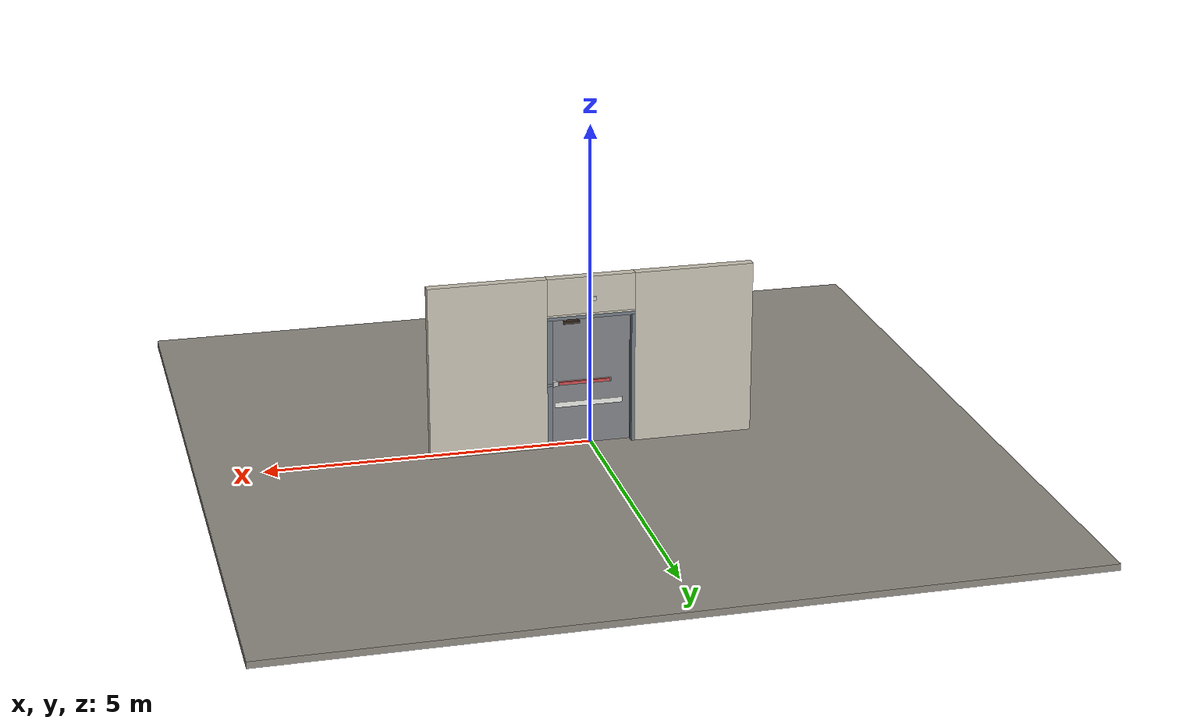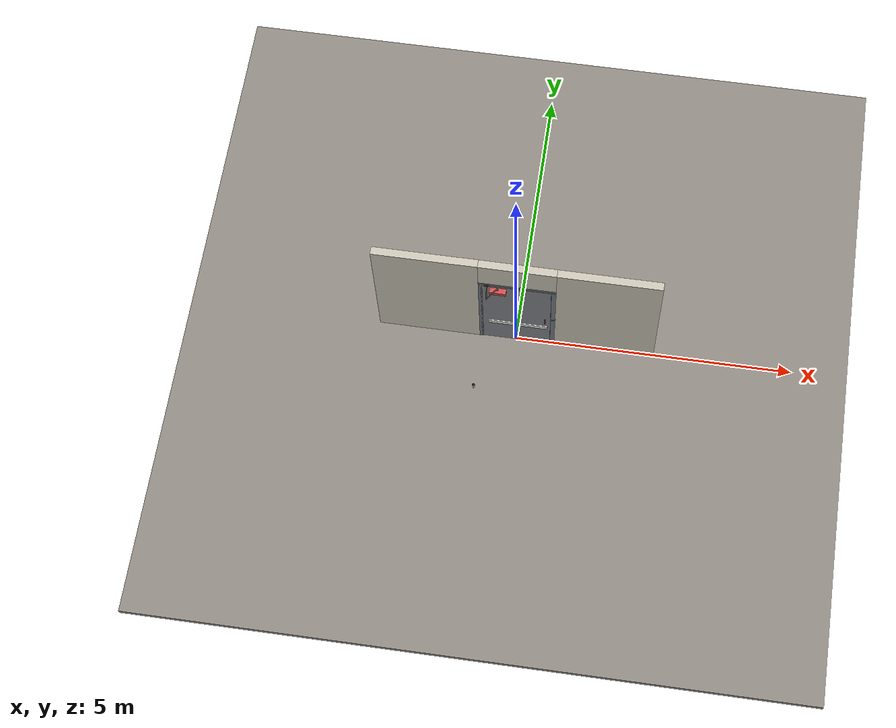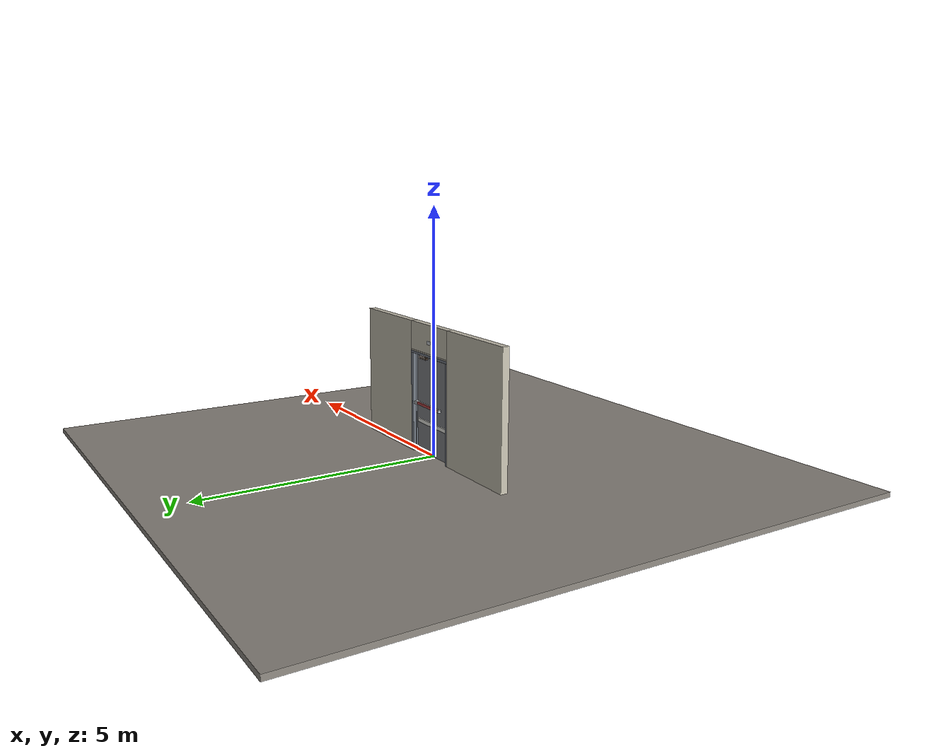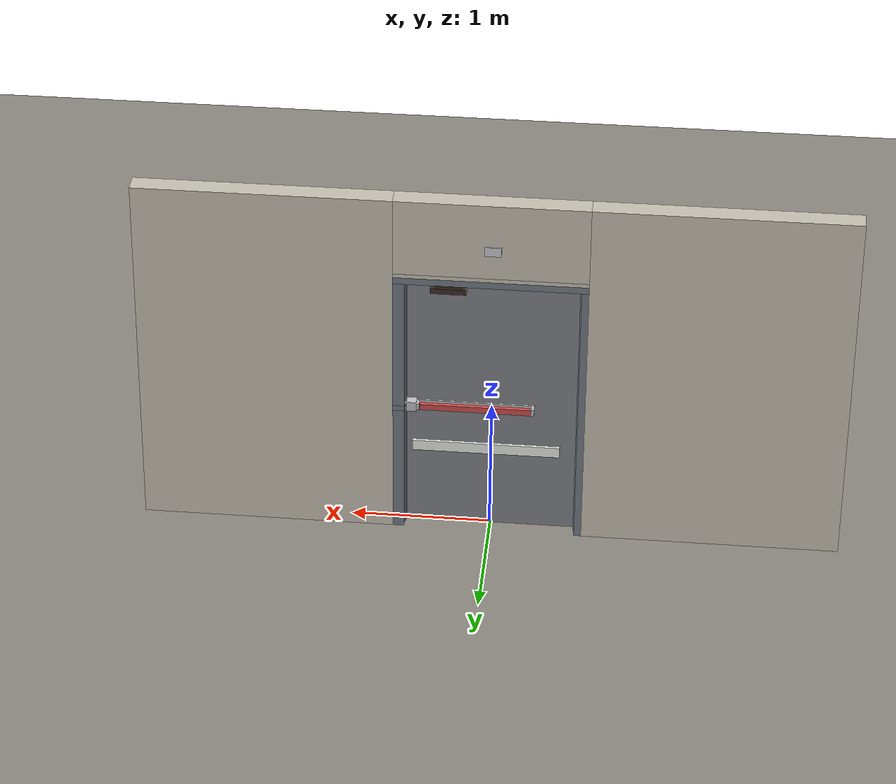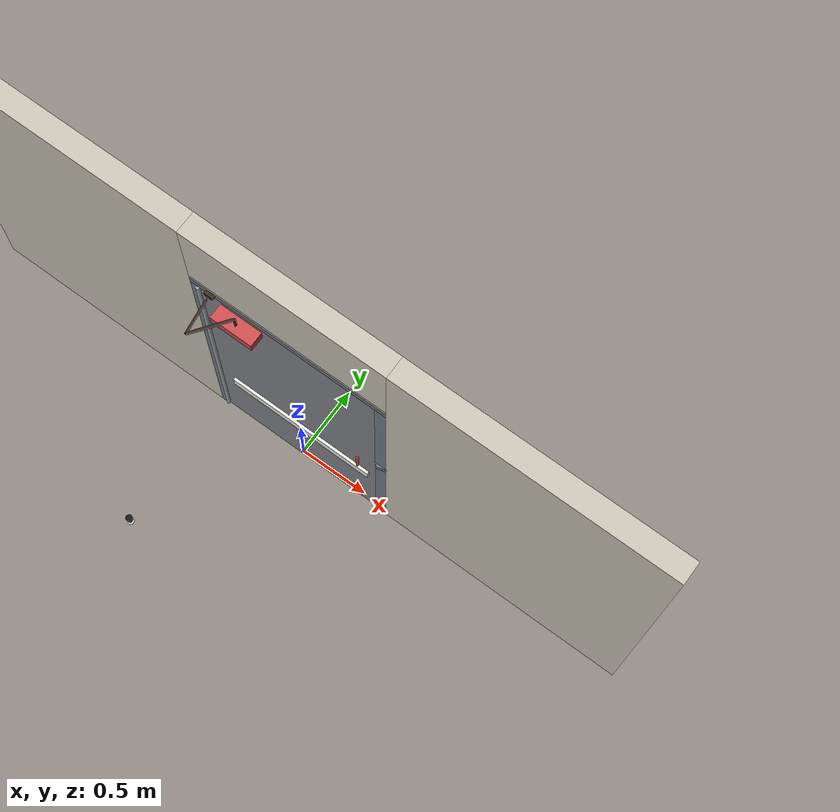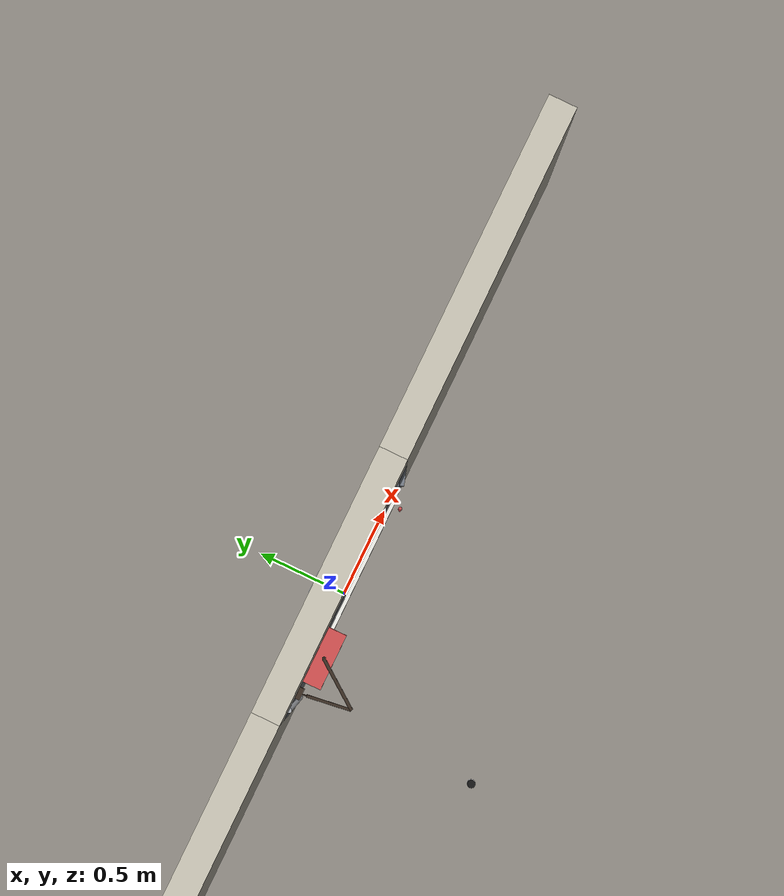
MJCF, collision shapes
<?xml version="1.0" ?>
<mujoco model="db0439_swing_single_full">
  <compiler angle="radian" meshdir="../../hardware" texturedir="../../textures" autolimits="true" inertiafromgeom="false"/>
  <option timestep="0.002" integrator="implicitfast" cone="elliptic" impratio="10" noslip_iterations="3">
    <flag multiccd="enable"/>
  </option>
  <size memory="16M"/>
  <default>
    <geom condim="4" solref="0.005 1" solimp="0.95 0.99 0.001"/>
    <joint solreflimit="0.005 1" solimplimit="0.95 0.99 0.001"/>
    <tendon solreflimit="0.005 1"/>
    <equality solref="0.002 1"/>
  </default>
  <visual>
    <headlight ambient="0.4 0.4 0.4" diffuse="0.7 0.7 0.7" specular="0.2 0.2 0.2"/>
    <quality shadowsize="4096"/>
    <map znear="0.01" zfar="60"/>
  </visual>
  <asset>
    <mesh name="closer_body_fdc4667657" file="closer_body_fdc4667657.obj"/>
    <mesh name="exit_sign_a6449bfa2c" file="exit_sign_a6449bfa2c.obj"/>
    <mesh name="pull_1e5d69a91a" file="pull_1e5d69a91a.obj"/>
    <mesh name="touchbar_pad_53c3d671cc" file="touchbar_pad_53c3d671cc.obj"/>
    <material name="mat_floor" rgba="0.55 0.53 0.5 1" specular="0.2" shininess="0.15" reflectance="0"/>
    <material name="mat_wall" rgba="0.78 0.76 0.7 1" specular="0.2" shininess="0.1" reflectance="0"/>
    <material name="mat_leaf" rgba="0.5 0.51 0.53 1" specular="0.2" shininess="0.36" reflectance="0"/>
    <material name="mat_hinge" rgba="0.65 0.66 0.68 1" specular="0.74" shininess="0.5" reflectance="0.36"/>
    <material name="mat_op_stainless" rgba="0.75 0.76 0.77 1" specular="0.8" shininess="0.65" reflectance="0.4"/>
    <material name="mat_bolt" rgba="0.75 0.76 0.77 1" specular="0.8" shininess="0.65" reflectance="0.4"/>
    <material name="mat_maglock" rgba="0.22 0.17 0.13 1" specular="0.8" shininess="0.6" reflectance="0.4"/>
    <material name="mat_frame" rgba="0.45 0.48 0.52 1" specular="0.32" shininess="0.6" reflectance="0.08"/>
    <material name="mat_closer" rgba="0.22 0.17 0.13 1" specular="0.8" shininess="0.6" reflectance="0.4"/>
    <material name="mat_bumper" rgba="0.92 0.92 0.9 1" specular="0.2" shininess="0.6" reflectance="0"/>
    <material name="mat_exit_sign" rgba="0.85 0.1 0.1 1" specular="0.2" shininess="0.6" reflectance="0"/>
    <material name="mat_sign_bracket" rgba="0.8 0.81 0.83 1" specular="0.8" shininess="0.6" reflectance="0.4"/>
    <material name="mat_bumper_stop" rgba="0.08 0.08 0.08 1" specular="0.2" shininess="0.1" reflectance="0"/>
    <material name="mat_stop_base" rgba="0.9 0.9 0.92 1" specular="0.8" shininess="0.9" reflectance="0.4"/>
    <texture name="skybox" type="skybox" builtin="gradient" rgb1="0.6 0.7 0.85" rgb2="0.9 0.92 0.95" width="256" height="256"/>
  </asset>
  <worldbody>
    <light name="sun" pos="1.5 -2.5 4" dir="-0.3 0.5 -0.8" directional="true" diffuse="0.8 0.8 0.8" specular="0.3 0.3 0.3" castshadow="true"/>
    <light name="fill" pos="-1.5 2.5 3" dir="0.3 -0.5 -0.7" directional="true" diffuse="0.35 0.35 0.4" castshadow="false"/>
    <camera name="robot_view" pos="0 -2.498687 1.734312" xyaxes="1 0 0 0 0.26963 0.962964" fovy="52"/>
    <camera name="far_view" pos="0 2.585687 1.734312" xyaxes="-1 0 0 0 -0.26963 0.962964" fovy="52"/>
    <camera name="iso" pos="1.932062 -2.091938 2.141063" xyaxes="0.741536 0.670913 0 -0.242917 0.268487 0.932151" fovy="46"/>
    <camera name="detail_handle" pos="0.699 -0.882 1.296" xyaxes="0.97561 0.219512 0 -0.070934 0.315262 0.94635" fovy="38"/>
    <geom name="floor" type="box" size="6 6 0.05" pos="0 0 -0.05" material="mat_floor" group="0" contype="1" conaffinity="1" friction="0.8 0.005 0.0001" density="2400"/>
    <geom name="wall_left" type="box" size="0.9185 0.0725 1.35" pos="-1.5815 0.0435 1.35" material="mat_wall" group="0" contype="1" conaffinity="1" friction="0.6 0.005 0.0001" density="800"/>
    <geom name="wall_right" type="box" size="0.9035 0.0725 1.35" pos="1.5965 0.0435 1.35" material="mat_wall" group="0" contype="1" conaffinity="1" friction="0.6 0.005 0.0001" density="800"/>
    <geom name="wall_header" type="box" size="0.678 0.0725 0.2875" pos="0.015 0.0435 2.4125" material="mat_wall" group="0" contype="1" conaffinity="1" friction="0.6 0.005 0.0001" density="800"/>
    <geom name="leaf_maglock_body" type="box" size="0.125 0.025 0.02" pos="0.309 0.057 1.98" material="mat_maglock" group="0" contype="1" conaffinity="1" friction="0.6 0.005 0.0001" density="2000"/>
    <geom name="leaf_maglock_bracket" type="box" size="0.09 0.025 0.0225" pos="0.309 0.057 2.0225" material="mat_maglock" group="1" contype="0" conaffinity="0" density="7850"/>
    <geom name="jamb_hinge" type="box" size="0.025 0.0725 1.0225" pos="-0.638 0.0435 1.0225" material="mat_frame" group="0" contype="1" conaffinity="1" friction="0.6 0.005 0.0001" density="300"/>
    <geom name="strike_1016_wall_n" type="box" size="0.04 0.0305 0.02" pos="0.653 0.0855 1.016" material="mat_frame" group="0" contype="1" conaffinity="1" friction="0.6 0.005 0.0001" density="300"/>
    <geom name="strike_1016_wall_p" type="box" size="0.04 0.008 0.02" pos="0.653 0.025 1.016" material="mat_frame" group="0" contype="1" conaffinity="1" friction="0.6 0.005 0.0001" density="300"/>
    <geom name="strike_1016_ramp" type="box" size="0.04 0.034482 0.02" pos="0.661281 -0.0044 1.016" quat="0.989198 0 0 0.146587" material="mat_frame" group="0" contype="1" conaffinity="1" friction="0.12 0.005 0.0001" density="300"/>
    <geom name="strike_1016_back" type="box" size="0.0285 0.011 0.02" pos="0.6645 0.044 1.016" material="mat_frame" group="0" contype="1" conaffinity="1" friction="0.6 0.005 0.0001" density="300"/>
    <geom name="jamb_strike_0" type="box" size="0.04 0.0725 0.498" pos="0.653 0.0435 0.498" material="mat_frame" group="0" contype="1" conaffinity="1" friction="0.6 0.005 0.0001" density="300"/>
    <geom name="jamb_strike_1" type="box" size="0.04 0.0725 0.5045" pos="0.653 0.0435 1.5405" material="mat_frame" group="0" contype="1" conaffinity="1" friction="0.6 0.005 0.0001" density="300"/>
    <geom name="jamb_head" type="box" size="0.678 0.0725 0.025" pos="0.015 0.0435 2.07" material="mat_frame" group="0" contype="1" conaffinity="1" friction="0.6 0.005 0.0001" density="300"/>
    <geom name="head_stud" type="box" size="0.678 0.0725 0.015" pos="0.015 0.0435 2.11" material="mat_wall" group="0" contype="1" conaffinity="1" friction="0.6 0.005 0.0001" density="500"/>
    <geom name="stop_hinge" type="box" size="0.0055 0.016 1.0225" pos="-0.6075 0.0385 1.0225" material="mat_frame" group="0" contype="1" conaffinity="1" friction="0.6 0.005 0.0001" density="300"/>
    <geom name="stop_strike" type="box" size="0.0055 0.016 0.48425" pos="0.6075 0.0385 0.48425" material="mat_frame" group="0" contype="1" conaffinity="1" friction="0.6 0.005 0.0001" density="300"/>
    <geom name="stop_strike_1" type="box" size="0.0055 0.016 0.49075" pos="0.6075 0.0385 1.55425" material="mat_frame" group="0" contype="1" conaffinity="1" friction="0.6 0.005 0.0001" density="300"/>
    <geom name="stop_head" type="box" size="0.613 0.016 0.0055" pos="0 0.0385 2.0395" material="mat_frame" group="0" contype="1" conaffinity="1" friction="0.6 0.005 0.0001" density="300"/>
    <geom name="closer_bracket" type="box" size="0.03 0.012 0.014" pos="-0.513 -0.041 2.075" material="mat_closer" group="1" contype="0" conaffinity="0" density="2700"/>
    <geom name="exit_sign" type="mesh" mesh="exit_sign_a6449bfa2c" pos="0 0.15 2.345" material="mat_exit_sign" group="2" contype="0" conaffinity="0" density="500"/>
    <geom name="exit_sign_bracket" type="box" size="0.05775 0.005 0.035" pos="0 0.1205 2.345" material="mat_sign_bracket" group="2" contype="0" conaffinity="0" density="7850"/>
    <geom name="door_stop_base" type="cylinder" size="0.022 0.003" pos="-0.626 -1.06515 0.003" material="mat_stop_base" group="0" contype="1" conaffinity="1" friction="0.6 0.005 0.0001" density="7850"/>
    <geom name="door_stop_post" type="cylinder" size="0.012 0.0245" pos="-0.626 -1.06515 0.0305" material="mat_stop_base" group="0" contype="1" conaffinity="1" friction="0.6 0.005 0.0001" density="7850"/>
    <geom name="door_stop_bumper" type="cylinder" size="0.022 0.02" pos="-0.626 -1.06515 0.075" material="mat_bumper_stop" group="0" contype="1" conaffinity="1" friction="0.6 0.005 0.0001" density="1100"/>
    <site name="approach_point" pos="0 -1.5 0" quat="1 0 0 0" size="0.05" rgba="0.2 0.9 0.2 0.5" group="4"/>
    <site name="goal_point" pos="0 1.5 0" quat="1 0 0 0" size="0.05" rgba="0.2 0.9 0.2 0.5" group="4"/>
    <site name="door_plane_center" pos="0 0 1.0225" quat="1 0 0 0" size="0.02" rgba="0.2 0.9 0.2 0.5" group="4"/>
    <body name="leaf" pos="-0.613 0 0">
      <inertial pos="0.551669 -0.012312 1.174144" mass="65.480279" quat="-0.47384 0.4499 0.535414 0.535161" diaginertia="7.98096713 26.070706137 33.936938795"/>
      <joint name="leaf_hinge" type="hinge" axis="0 0 -1" pos="0.003 -0.029 0" limited="true" range="0 1.570796" damping="12.810319" frictionloss="2.213627" stiffness="17.825354" springref="-2.387049" armature="0.02"/>
      <geom name="leaf_slab" type="box" size="0.6095 0.022 1.016" pos="0.6125 0 1.025" material="mat_leaf" group="0" contype="1" conaffinity="1" friction="0.4 0.005 0.0001" density="1"/>
      <geom name="hinge_continuous" type="cylinder" size="0.0136 1.006" pos="0.003 -0.029 1.025" material="mat_hinge" group="1" contype="0" conaffinity="0" density="2700"/>
      <geom name="leaf_exit_device_rail" type="box" size="0.416175 0.006 0.025" pos="0.725825 0.028 1.016" material="mat_op_stainless" group="0" contype="1" conaffinity="1" friction="0.6 0.005 0.0001" density="3000"/>
      <geom name="leaf_exit_device_rail_end_n" type="box" size="0.01 0.0325 0.025" pos="0.31965 0.0545 1.016" material="mat_op_stainless" group="0" contype="1" conaffinity="1" friction="0.6 0.005 0.0001" density="3000"/>
      <geom name="leaf_exit_device_rail_end_p" type="box" size="0.01 0.0325 0.025" pos="1.132 0.0545 1.016" material="mat_op_stainless" group="0" contype="1" conaffinity="1" friction="0.6 0.005 0.0001" density="3000"/>
      <geom name="leaf_exit_device_case" type="box" size="0.034 0.034125 0.0375" pos="1.176 0.056125 1.016" material="mat_op_stainless" group="0" contype="1" conaffinity="1" friction="0.6 0.005 0.0001" density="3000"/>
      <geom name="leaf_far_pull_n" type="mesh" mesh="pull_1e5d69a91a" pos="1.132 -0.022 1.016" quat="0.707107 0.707107 0 0" material="mat_op_stainless" group="1" contype="0" conaffinity="0" density="3000"/>
      <geom name="leaf_far_pull_col_n" type="capsule" size="0.0095 0.08" pos="1.132 -0.082 1.016" material="mat_op_stainless" group="3" contype="1" conaffinity="1" rgba="0.8 0.3 0.3 0.25" friction="0.7 0.01 0.0001" density="3000"/>
      <geom name="leaf_maglock_armature" type="box" size="0.09 0.005 0.02" pos="0.922 0.027 1.98" material="mat_maglock" group="1" contype="0" conaffinity="0" density="7800"/>
      <geom name="closer_body" type="mesh" mesh="closer_body_fdc4667657" pos="0.3 -0.022 1.952" quat="0.707107 0.707107 0 0" material="mat_closer" group="1" contype="0" conaffinity="0" density="2000"/>
      <geom name="closer_body_col" type="box" size="0.145 0.05 0.035" pos="0.3 -0.072 1.952" material="mat_closer" group="3" contype="1" conaffinity="1" rgba="0.8 0.3 0.3 0.25" friction="0.6 0.005 0.0001" density="2000"/>
      <geom name="closer_pinion_shaft" type="cylinder" size="0.008 0.0615" pos="0.3 -0.072 2.0135" material="mat_closer" group="1" contype="0" conaffinity="0" density="2700"/>
      <geom name="bumper_rail_n" type="box" size="0.5245 0.01 0.04" pos="0.6475 -0.032 0.659" material="mat_bumper" group="0" contype="1" conaffinity="1" friction="0.6 0.005 0.0001" density="1200"/>
      <geom name="bumper_rail_p" type="box" size="0.5245 0.01 0.04" pos="0.6475 0.032 0.659" material="mat_bumper" group="0" contype="1" conaffinity="1" friction="0.6 0.005 0.0001" density="1200"/>
      <site name="leaf_far_pull_grip_n" pos="1.132 -0.082 1.016" quat="1 0 0 0" size="0.012" rgba="0.2 0.9 0.2 0.5" group="4"/>
      <site name="leaf_edge_mid" pos="1.222 0 1.016" quat="1 0 0 0" size="0.02" rgba="0.2 0.9 0.2 0.5" group="4"/>
      <body name="leaf_exit_device" pos="0.725825 0.022 1.016">
        <inertial pos="0 0.05 0" mass="6.369435" quat="0.707107 -0.707107 0 0" diaginertia="0.00155255 0.328687433 0.329284568"/>
        <joint name="leaf_exit_device_slide" type="slide" axis="0 -1 0" limited="true" range="0 0.016" damping="176.89909" frictionloss="0.5" stiffness="1200" springref="-0.015" armature="0.15"/>
        <geom name="leaf_exit_device_pad" type="mesh" mesh="touchbar_pad_53c3d671cc" pos="0 0 0" quat="-0.707107 0.707107 0 0" material="mat_op_stainless" group="1" contype="0" conaffinity="0" density="3000"/>
        <geom name="leaf_exit_device_pad_col" type="box" size="0.393175 0.015 0.0225" pos="0 0.05 0" material="mat_op_stainless" group="3" contype="1" conaffinity="1" rgba="0.8 0.3 0.3 0.25" friction="0.8 0.01 0.0001" density="3000"/>
        <site name="leaf_exit_device_push" pos="0 0.065 0" quat="1 0 0 0" size="0.015" rgba="0.2 0.9 0.2 0.5" group="4"/>
      </body>
      <body name="leaf_latch_bolt" pos="1.222 0.044 1.016">
        <inertial pos="-0.0055 0 0" mass="0.102826" quat="0.92388 -0.382683 0 0" diaginertia="0.000004365 0.000018287 0.000018287"/>
        <joint name="leaf_latch_bolt_slide" type="slide" axis="-1 0 0" limited="true" range="0 0.019" damping="2" frictionloss="0.3" stiffness="800" springref="-0.01" armature="0.1"/>
        <geom name="leaf_latch_bolt_capsule" type="capsule" size="0.0095 0.015" pos="-0.0055 0 0" quat="0.707107 0 0.707107 0" material="mat_bolt" group="0" contype="1" conaffinity="1" friction="0.2 0.005 0.0001" density="8500"/>
      </body>
      <body name="closer_arm_main" pos="0.3 -0.072 2.075" quat="0.454107 0 0 -0.890947">
        <inertial pos="0.14 0 0" mass="0.12096" quat="1 0 0 0" diaginertia="0.000003588 0.00079128 0.000792852"/>
        <joint name="closer_pinion" type="hinge" axis="0 0 1" limited="false" damping="0.01" armature="0.002"/>
        <geom name="closer_arm_main_geom" type="box" size="0.14 0.008 0.005" pos="0.14 0 0" material="mat_closer" group="1" contype="0" conaffinity="0" density="2700"/>
        <body name="closer_arm_fore" pos="0.28 0 0" quat="-0.373215 0 0 0.927745">
          <inertial pos="0.128088 0 0" mass="0.076531" quat="1 0 0 0" diaginertia="0.000001771 0.000437665 0.000438201"/>
          <joint name="closer_elbow" type="hinge" axis="0 0 1" limited="false" damping="0.01" armature="0.002"/>
          <geom name="closer_arm_fore_geom" type="box" size="0.1125 0.007 0.004" pos="0.1125 0 0" material="mat_closer" group="1" contype="0" conaffinity="0" density="2700"/>
          <geom name="closer_fore_neck" type="box" size="0.0175 0.003 0.003" pos="0.2425 0 0" material="mat_closer" group="1" contype="0" conaffinity="0" density="2700"/>
          <geom name="closer_fore_pivot" type="cylinder" size="0.005 0.012" pos="0.26 0 0" material="mat_closer" group="1" contype="0" conaffinity="0" density="2700"/>
        </body>
      </body>
    </body>
  </worldbody>
  <tendon>
    <fixed name="leaf_latch_bolt_coupling" limited="true" range="0 10">
      <joint joint="leaf_latch_bolt_slide" coef="1"/>
      <joint joint="leaf_exit_device_slide" coef="-1.357143"/>
    </fixed>
  </tendon>
  <equality>
    <weld name="leaf_maglock" body1="leaf" body2="world" active="true"/>
    <connect name="closer_arm_connect" body1="closer_arm_fore" body2="world" anchor="0.26 0 0" active="true"/>
  </equality>
  <contact>
    <exclude body1="closer_arm_main" body2="leaf"/>
    <exclude body1="closer_arm_fore" body2="leaf"/>
    <exclude body1="closer_arm_main" body2="closer_arm_fore"/>
  </contact>
  <sensor>
    <jointpos name="leaf_hinge_pos" joint="leaf_hinge"/>
    <jointvel name="leaf_hinge_vel" joint="leaf_hinge"/>
    <jointpos name="leaf_exit_device_slide_pos" joint="leaf_exit_device_slide"/>
    <jointvel name="leaf_exit_device_slide_vel" joint="leaf_exit_device_slide"/>
    <jointpos name="leaf_latch_bolt_slide_pos" joint="leaf_latch_bolt_slide"/>
    <jointvel name="leaf_latch_bolt_slide_vel" joint="leaf_latch_bolt_slide"/>
  </sensor>
</mujoco>
